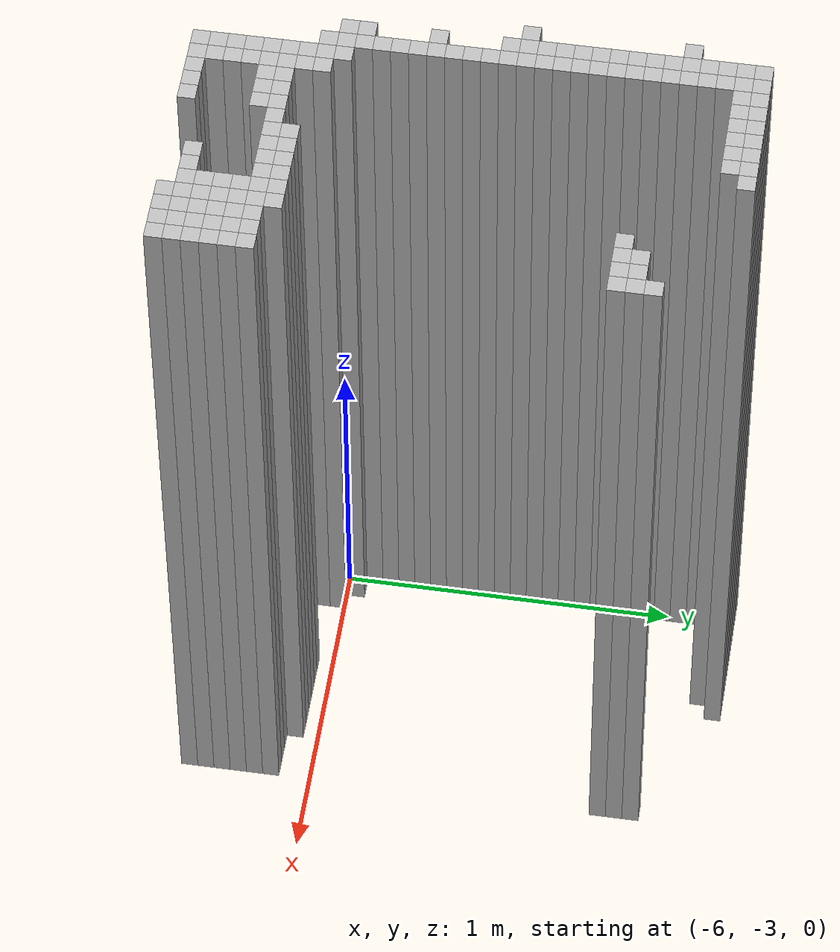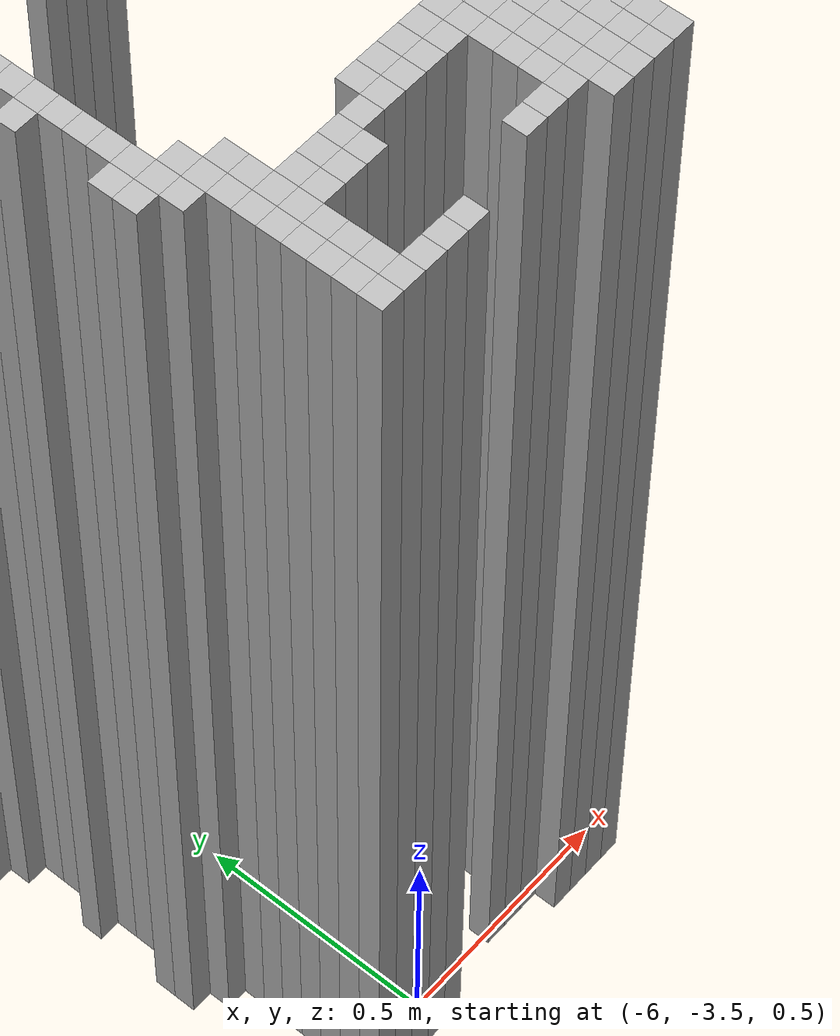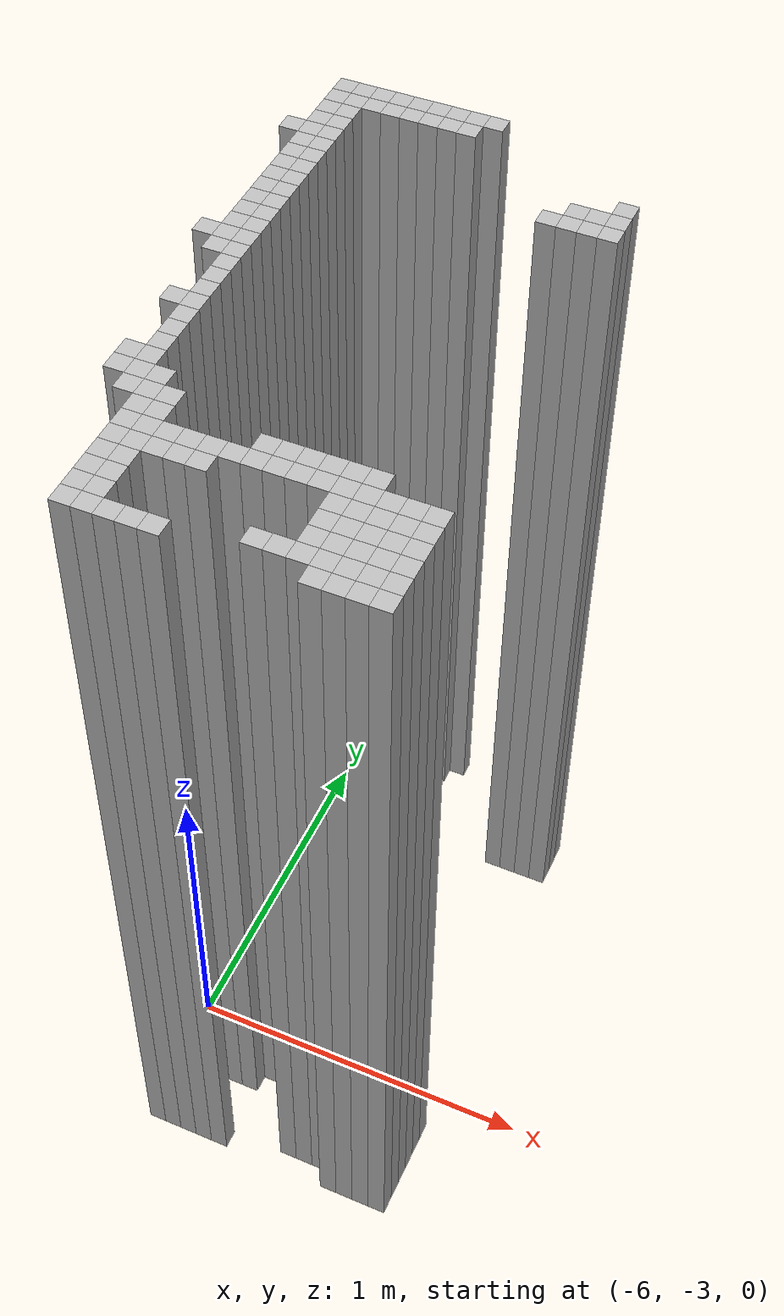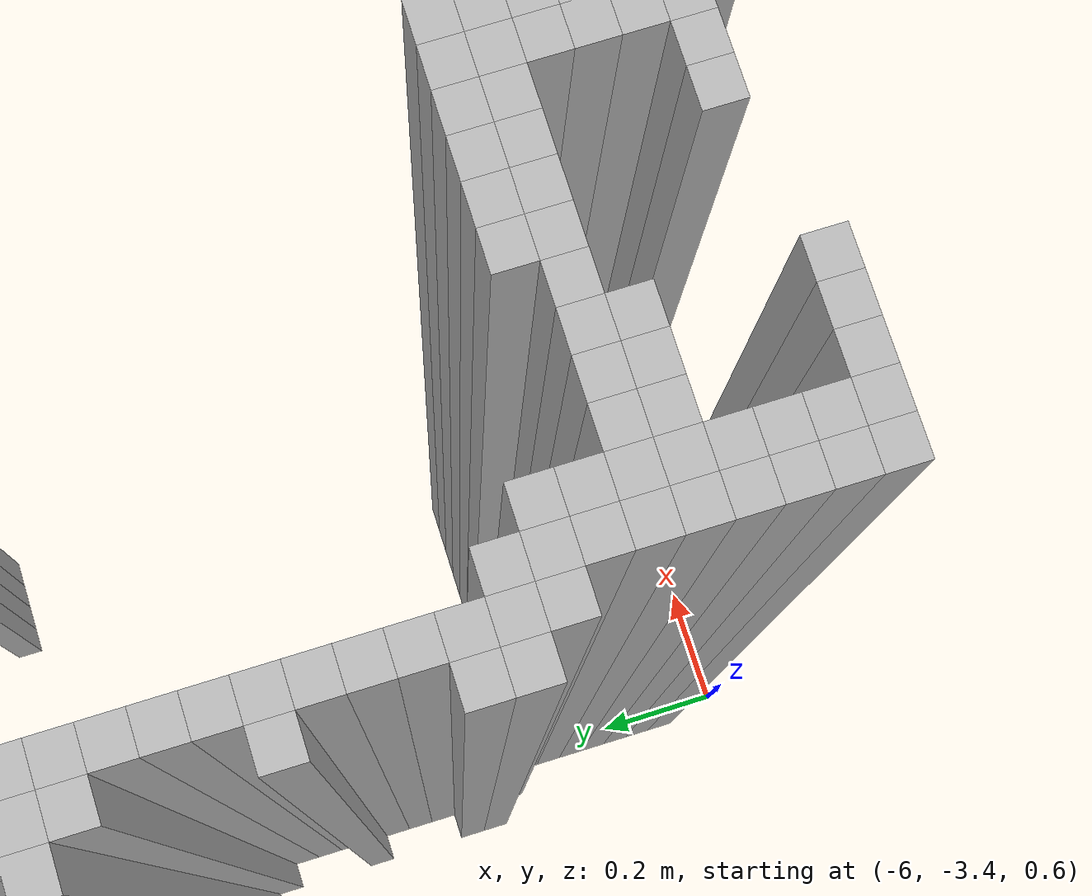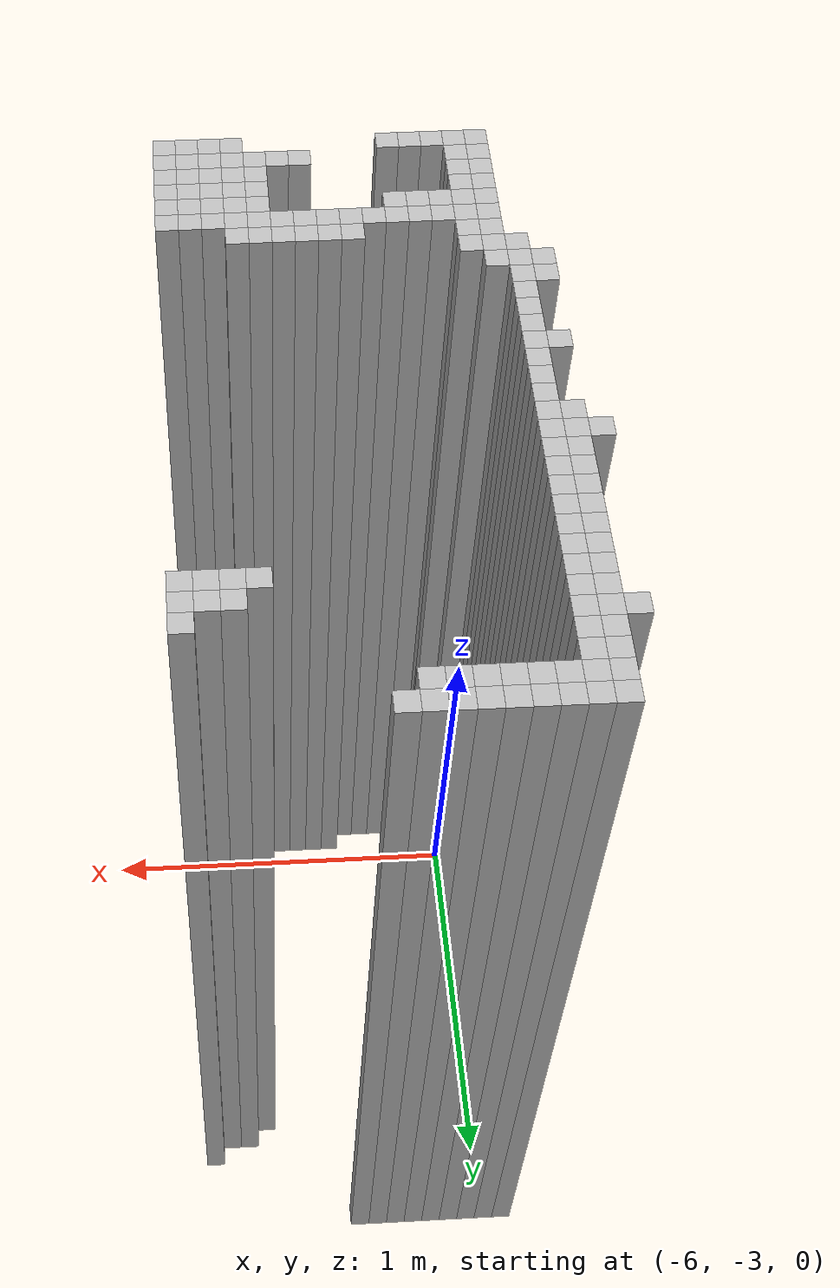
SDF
<sdf version="1.9">
 <world name="map_world">
  <model name="wall_102_190">
   <static>true</static>
   <pose>-6.061 -1.820 1.250 0 0 0</pose>
   <link name="link">
    <collision name="collision"><geometry><box><size>0.050 0.050 2.500</size></box></geometry></collision>
    <visual name="visual"><geometry><box><size>0.050 0.050 2.500</size></box></geometry></visual>
   </link>
  </model>
  <model name="wall_103_190">
   <static>true</static>
   <pose>-6.011 -1.820 1.250 0 0 0</pose>
   <link name="link">
    <collision name="collision"><geometry><box><size>0.050 0.050 2.500</size></box></geometry></collision>
    <visual name="visual"><geometry><box><size>0.050 0.050 2.500</size></box></geometry></visual>
   </link>
  </model>
  <model name="wall_104_190">
   <static>true</static>
   <pose>-5.961 -1.820 1.250 0 0 0</pose>
   <link name="link">
    <collision name="collision"><geometry><box><size>0.050 0.050 2.500</size></box></geometry></collision>
    <visual name="visual"><geometry><box><size>0.050 0.050 2.500</size></box></geometry></visual>
   </link>
  </model>
  <model name="wall_105_190">
   <static>true</static>
   <pose>-5.911 -1.820 1.250 0 0 0</pose>
   <link name="link">
    <collision name="collision"><geometry><box><size>0.050 0.050 2.500</size></box></geometry></collision>
    <visual name="visual"><geometry><box><size>0.050 0.050 2.500</size></box></geometry></visual>
   </link>
  </model>
  <model name="wall_106_190">
   <static>true</static>
   <pose>-5.861 -1.820 1.250 0 0 0</pose>
   <link name="link">
    <collision name="collision"><geometry><box><size>0.050 0.050 2.500</size></box></geometry></collision>
    <visual name="visual"><geometry><box><size>0.050 0.050 2.500</size></box></geometry></visual>
   </link>
  </model>
  <model name="wall_107_190">
   <static>true</static>
   <pose>-5.811 -1.820 1.250 0 0 0</pose>
   <link name="link">
    <collision name="collision"><geometry><box><size>0.050 0.050 2.500</size></box></geometry></collision>
    <visual name="visual"><geometry><box><size>0.050 0.050 2.500</size></box></geometry></visual>
   </link>
  </model>
  <model name="wall_108_190">
   <static>true</static>
   <pose>-5.761 -1.820 1.250 0 0 0</pose>
   <link name="link">
    <collision name="collision"><geometry><box><size>0.050 0.050 2.500</size></box></geometry></collision>
    <visual name="visual"><geometry><box><size>0.050 0.050 2.500</size></box></geometry></visual>
   </link>
  </model>
  <model name="wall_109_190">
   <static>true</static>
   <pose>-5.711 -1.820 1.250 0 0 0</pose>
   <link name="link">
    <collision name="collision"><geometry><box><size>0.050 0.050 2.500</size></box></geometry></collision>
    <visual name="visual"><geometry><box><size>0.050 0.050 2.500</size></box></geometry></visual>
   </link>
  </model>
  <model name="wall_110_190">
   <static>true</static>
   <pose>-5.661 -1.820 1.250 0 0 0</pose>
   <link name="link">
    <collision name="collision"><geometry><box><size>0.050 0.050 2.500</size></box></geometry></collision>
    <visual name="visual"><geometry><box><size>0.050 0.050 2.500</size></box></geometry></visual>
   </link>
  </model>
  <model name="wall_102_191">
   <static>true</static>
   <pose>-6.061 -1.870 1.250 0 0 0</pose>
   <link name="link">
    <collision name="collision"><geometry><box><size>0.050 0.050 2.500</size></box></geometry></collision>
    <visual name="visual"><geometry><box><size>0.050 0.050 2.500</size></box></geometry></visual>
   </link>
  </model>
  <model name="wall_103_191">
   <static>true</static>
   <pose>-6.011 -1.870 1.250 0 0 0</pose>
   <link name="link">
    <collision name="collision"><geometry><box><size>0.050 0.050 2.500</size></box></geometry></collision>
    <visual name="visual"><geometry><box><size>0.050 0.050 2.500</size></box></geometry></visual>
   </link>
  </model>
  <model name="wall_104_191">
   <static>true</static>
   <pose>-5.961 -1.870 1.250 0 0 0</pose>
   <link name="link">
    <collision name="collision"><geometry><box><size>0.050 0.050 2.500</size></box></geometry></collision>
    <visual name="visual"><geometry><box><size>0.050 0.050 2.500</size></box></geometry></visual>
   </link>
  </model>
  <model name="wall_105_191">
   <static>true</static>
   <pose>-5.911 -1.870 1.250 0 0 0</pose>
   <link name="link">
    <collision name="collision"><geometry><box><size>0.050 0.050 2.500</size></box></geometry></collision>
    <visual name="visual"><geometry><box><size>0.050 0.050 2.500</size></box></geometry></visual>
   </link>
  </model>
  <model name="wall_106_191">
   <static>true</static>
   <pose>-5.861 -1.870 1.250 0 0 0</pose>
   <link name="link">
    <collision name="collision"><geometry><box><size>0.050 0.050 2.500</size></box></geometry></collision>
    <visual name="visual"><geometry><box><size>0.050 0.050 2.500</size></box></geometry></visual>
   </link>
  </model>
  <model name="wall_107_191">
   <static>true</static>
   <pose>-5.811 -1.870 1.250 0 0 0</pose>
   <link name="link">
    <collision name="collision"><geometry><box><size>0.050 0.050 2.500</size></box></geometry></collision>
    <visual name="visual"><geometry><box><size>0.050 0.050 2.500</size></box></geometry></visual>
   </link>
  </model>
  <model name="wall_108_191">
   <static>true</static>
   <pose>-5.761 -1.870 1.250 0 0 0</pose>
   <link name="link">
    <collision name="collision"><geometry><box><size>0.050 0.050 2.500</size></box></geometry></collision>
    <visual name="visual"><geometry><box><size>0.050 0.050 2.500</size></box></geometry></visual>
   </link>
  </model>
  <model name="wall_109_191">
   <static>true</static>
   <pose>-5.711 -1.870 1.250 0 0 0</pose>
   <link name="link">
    <collision name="collision"><geometry><box><size>0.050 0.050 2.500</size></box></geometry></collision>
    <visual name="visual"><geometry><box><size>0.050 0.050 2.500</size></box></geometry></visual>
   </link>
  </model>
  <model name="wall_102_192">
   <static>true</static>
   <pose>-6.061 -1.920 1.250 0 0 0</pose>
   <link name="link">
    <collision name="collision"><geometry><box><size>0.050 0.050 2.500</size></box></geometry></collision>
    <visual name="visual"><geometry><box><size>0.050 0.050 2.500</size></box></geometry></visual>
   </link>
  </model>
  <model name="wall_103_192">
   <static>true</static>
   <pose>-6.011 -1.920 1.250 0 0 0</pose>
   <link name="link">
    <collision name="collision"><geometry><box><size>0.050 0.050 2.500</size></box></geometry></collision>
    <visual name="visual"><geometry><box><size>0.050 0.050 2.500</size></box></geometry></visual>
   </link>
  </model>
  <model name="wall_102_193">
   <static>true</static>
   <pose>-6.061 -1.970 1.250 0 0 0</pose>
   <link name="link">
    <collision name="collision"><geometry><box><size>0.050 0.050 2.500</size></box></geometry></collision>
    <visual name="visual"><geometry><box><size>0.050 0.050 2.500</size></box></geometry></visual>
   </link>
  </model>
  <model name="wall_103_193">
   <static>true</static>
   <pose>-6.011 -1.970 1.250 0 0 0</pose>
   <link name="link">
    <collision name="collision"><geometry><box><size>0.050 0.050 2.500</size></box></geometry></collision>
    <visual name="visual"><geometry><box><size>0.050 0.050 2.500</size></box></geometry></visual>
   </link>
  </model>
  <model name="wall_101_194">
   <static>true</static>
   <pose>-6.111 -2.020 1.250 0 0 0</pose>
   <link name="link">
    <collision name="collision"><geometry><box><size>0.050 0.050 2.500</size></box></geometry></collision>
    <visual name="visual"><geometry><box><size>0.050 0.050 2.500</size></box></geometry></visual>
   </link>
  </model>
  <model name="wall_102_194">
   <static>true</static>
   <pose>-6.061 -2.020 1.250 0 0 0</pose>
   <link name="link">
    <collision name="collision"><geometry><box><size>0.050 0.050 2.500</size></box></geometry></collision>
    <visual name="visual"><geometry><box><size>0.050 0.050 2.500</size></box></geometry></visual>
   </link>
  </model>
  <model name="wall_103_194">
   <static>true</static>
   <pose>-6.011 -2.020 1.250 0 0 0</pose>
   <link name="link">
    <collision name="collision"><geometry><box><size>0.050 0.050 2.500</size></box></geometry></collision>
    <visual name="visual"><geometry><box><size>0.050 0.050 2.500</size></box></geometry></visual>
   </link>
  </model>
  <model name="wall_118_194">
   <static>true</static>
   <pose>-5.261 -2.020 1.250 0 0 0</pose>
   <link name="link">
    <collision name="collision"><geometry><box><size>0.050 0.050 2.500</size></box></geometry></collision>
    <visual name="visual"><geometry><box><size>0.050 0.050 2.500</size></box></geometry></visual>
   </link>
  </model>
  <model name="wall_102_195">
   <static>true</static>
   <pose>-6.061 -2.070 1.250 0 0 0</pose>
   <link name="link">
    <collision name="collision"><geometry><box><size>0.050 0.050 2.500</size></box></geometry></collision>
    <visual name="visual"><geometry><box><size>0.050 0.050 2.500</size></box></geometry></visual>
   </link>
  </model>
  <model name="wall_103_195">
   <static>true</static>
   <pose>-6.011 -2.070 1.250 0 0 0</pose>
   <link name="link">
    <collision name="collision"><geometry><box><size>0.050 0.050 2.500</size></box></geometry></collision>
    <visual name="visual"><geometry><box><size>0.050 0.050 2.500</size></box></geometry></visual>
   </link>
  </model>
  <model name="wall_116_195">
   <static>true</static>
   <pose>-5.361 -2.070 1.250 0 0 0</pose>
   <link name="link">
    <collision name="collision"><geometry><box><size>0.050 0.050 2.500</size></box></geometry></collision>
    <visual name="visual"><geometry><box><size>0.050 0.050 2.500</size></box></geometry></visual>
   </link>
  </model>
  <model name="wall_117_195">
   <static>true</static>
   <pose>-5.311 -2.070 1.250 0 0 0</pose>
   <link name="link">
    <collision name="collision"><geometry><box><size>0.050 0.050 2.500</size></box></geometry></collision>
    <visual name="visual"><geometry><box><size>0.050 0.050 2.500</size></box></geometry></visual>
   </link>
  </model>
  <model name="wall_118_195">
   <static>true</static>
   <pose>-5.261 -2.070 1.250 0 0 0</pose>
   <link name="link">
    <collision name="collision"><geometry><box><size>0.050 0.050 2.500</size></box></geometry></collision>
    <visual name="visual"><geometry><box><size>0.050 0.050 2.500</size></box></geometry></visual>
   </link>
  </model>
  <model name="wall_102_196">
   <static>true</static>
   <pose>-6.061 -2.120 1.250 0 0 0</pose>
   <link name="link">
    <collision name="collision"><geometry><box><size>0.050 0.050 2.500</size></box></geometry></collision>
    <visual name="visual"><geometry><box><size>0.050 0.050 2.500</size></box></geometry></visual>
   </link>
  </model>
  <model name="wall_103_196">
   <static>true</static>
   <pose>-6.011 -2.120 1.250 0 0 0</pose>
   <link name="link">
    <collision name="collision"><geometry><box><size>0.050 0.050 2.500</size></box></geometry></collision>
    <visual name="visual"><geometry><box><size>0.050 0.050 2.500</size></box></geometry></visual>
   </link>
  </model>
  <model name="wall_115_196">
   <static>true</static>
   <pose>-5.411 -2.120 1.250 0 0 0</pose>
   <link name="link">
    <collision name="collision"><geometry><box><size>0.050 0.050 2.500</size></box></geometry></collision>
    <visual name="visual"><geometry><box><size>0.050 0.050 2.500</size></box></geometry></visual>
   </link>
  </model>
  <model name="wall_116_196">
   <static>true</static>
   <pose>-5.361 -2.120 1.250 0 0 0</pose>
   <link name="link">
    <collision name="collision"><geometry><box><size>0.050 0.050 2.500</size></box></geometry></collision>
    <visual name="visual"><geometry><box><size>0.050 0.050 2.500</size></box></geometry></visual>
   </link>
  </model>
  <model name="wall_117_196">
   <static>true</static>
   <pose>-5.311 -2.120 1.250 0 0 0</pose>
   <link name="link">
    <collision name="collision"><geometry><box><size>0.050 0.050 2.500</size></box></geometry></collision>
    <visual name="visual"><geometry><box><size>0.050 0.050 2.500</size></box></geometry></visual>
   </link>
  </model>
  <model name="wall_118_196">
   <static>true</static>
   <pose>-5.261 -2.120 1.250 0 0 0</pose>
   <link name="link">
    <collision name="collision"><geometry><box><size>0.050 0.050 2.500</size></box></geometry></collision>
    <visual name="visual"><geometry><box><size>0.050 0.050 2.500</size></box></geometry></visual>
   </link>
  </model>
  <model name="wall_102_197">
   <static>true</static>
   <pose>-6.061 -2.170 1.250 0 0 0</pose>
   <link name="link">
    <collision name="collision"><geometry><box><size>0.050 0.050 2.500</size></box></geometry></collision>
    <visual name="visual"><geometry><box><size>0.050 0.050 2.500</size></box></geometry></visual>
   </link>
  </model>
  <model name="wall_103_197">
   <static>true</static>
   <pose>-6.011 -2.170 1.250 0 0 0</pose>
   <link name="link">
    <collision name="collision"><geometry><box><size>0.050 0.050 2.500</size></box></geometry></collision>
    <visual name="visual"><geometry><box><size>0.050 0.050 2.500</size></box></geometry></visual>
   </link>
  </model>
  <model name="wall_102_198">
   <static>true</static>
   <pose>-6.061 -2.220 1.250 0 0 0</pose>
   <link name="link">
    <collision name="collision"><geometry><box><size>0.050 0.050 2.500</size></box></geometry></collision>
    <visual name="visual"><geometry><box><size>0.050 0.050 2.500</size></box></geometry></visual>
   </link>
  </model>
  <model name="wall_103_198">
   <static>true</static>
   <pose>-6.011 -2.220 1.250 0 0 0</pose>
   <link name="link">
    <collision name="collision"><geometry><box><size>0.050 0.050 2.500</size></box></geometry></collision>
    <visual name="visual"><geometry><box><size>0.050 0.050 2.500</size></box></geometry></visual>
   </link>
  </model>
  <model name="wall_102_199">
   <static>true</static>
   <pose>-6.061 -2.270 1.250 0 0 0</pose>
   <link name="link">
    <collision name="collision"><geometry><box><size>0.050 0.050 2.500</size></box></geometry></collision>
    <visual name="visual"><geometry><box><size>0.050 0.050 2.500</size></box></geometry></visual>
   </link>
  </model>
  <model name="wall_103_199">
   <static>true</static>
   <pose>-6.011 -2.270 1.250 0 0 0</pose>
   <link name="link">
    <collision name="collision"><geometry><box><size>0.050 0.050 2.500</size></box></geometry></collision>
    <visual name="visual"><geometry><box><size>0.050 0.050 2.500</size></box></geometry></visual>
   </link>
  </model>
  <model name="wall_102_200">
   <static>true</static>
   <pose>-6.061 -2.320 1.250 0 0 0</pose>
   <link name="link">
    <collision name="collision"><geometry><box><size>0.050 0.050 2.500</size></box></geometry></collision>
    <visual name="visual"><geometry><box><size>0.050 0.050 2.500</size></box></geometry></visual>
   </link>
  </model>
  <model name="wall_103_200">
   <static>true</static>
   <pose>-6.011 -2.320 1.250 0 0 0</pose>
   <link name="link">
    <collision name="collision"><geometry><box><size>0.050 0.050 2.500</size></box></geometry></collision>
    <visual name="visual"><geometry><box><size>0.050 0.050 2.500</size></box></geometry></visual>
   </link>
  </model>
  <model name="wall_102_201">
   <static>true</static>
   <pose>-6.061 -2.370 1.250 0 0 0</pose>
   <link name="link">
    <collision name="collision"><geometry><box><size>0.050 0.050 2.500</size></box></geometry></collision>
    <visual name="visual"><geometry><box><size>0.050 0.050 2.500</size></box></geometry></visual>
   </link>
  </model>
  <model name="wall_103_201">
   <static>true</static>
   <pose>-6.011 -2.370 1.250 0 0 0</pose>
   <link name="link">
    <collision name="collision"><geometry><box><size>0.050 0.050 2.500</size></box></geometry></collision>
    <visual name="visual"><geometry><box><size>0.050 0.050 2.500</size></box></geometry></visual>
   </link>
  </model>
  <model name="wall_102_202">
   <static>true</static>
   <pose>-6.061 -2.420 1.250 0 0 0</pose>
   <link name="link">
    <collision name="collision"><geometry><box><size>0.050 0.050 2.500</size></box></geometry></collision>
    <visual name="visual"><geometry><box><size>0.050 0.050 2.500</size></box></geometry></visual>
   </link>
  </model>
  <model name="wall_103_202">
   <static>true</static>
   <pose>-6.011 -2.420 1.250 0 0 0</pose>
   <link name="link">
    <collision name="collision"><geometry><box><size>0.050 0.050 2.500</size></box></geometry></collision>
    <visual name="visual"><geometry><box><size>0.050 0.050 2.500</size></box></geometry></visual>
   </link>
  </model>
  <model name="wall_101_203">
   <static>true</static>
   <pose>-6.111 -2.470 1.250 0 0 0</pose>
   <link name="link">
    <collision name="collision"><geometry><box><size>0.050 0.050 2.500</size></box></geometry></collision>
    <visual name="visual"><geometry><box><size>0.050 0.050 2.500</size></box></geometry></visual>
   </link>
  </model>
  <model name="wall_102_203">
   <static>true</static>
   <pose>-6.061 -2.470 1.250 0 0 0</pose>
   <link name="link">
    <collision name="collision"><geometry><box><size>0.050 0.050 2.500</size></box></geometry></collision>
    <visual name="visual"><geometry><box><size>0.050 0.050 2.500</size></box></geometry></visual>
   </link>
  </model>
  <model name="wall_103_203">
   <static>true</static>
   <pose>-6.011 -2.470 1.250 0 0 0</pose>
   <link name="link">
    <collision name="collision"><geometry><box><size>0.050 0.050 2.500</size></box></geometry></collision>
    <visual name="visual"><geometry><box><size>0.050 0.050 2.500</size></box></geometry></visual>
   </link>
  </model>
  <model name="wall_102_204">
   <static>true</static>
   <pose>-6.061 -2.520 1.250 0 0 0</pose>
   <link name="link">
    <collision name="collision"><geometry><box><size>0.050 0.050 2.500</size></box></geometry></collision>
    <visual name="visual"><geometry><box><size>0.050 0.050 2.500</size></box></geometry></visual>
   </link>
  </model>
  <model name="wall_103_204">
   <static>true</static>
   <pose>-6.011 -2.520 1.250 0 0 0</pose>
   <link name="link">
    <collision name="collision"><geometry><box><size>0.050 0.050 2.500</size></box></geometry></collision>
    <visual name="visual"><geometry><box><size>0.050 0.050 2.500</size></box></geometry></visual>
   </link>
  </model>
  <model name="wall_103_205">
   <static>true</static>
   <pose>-6.011 -2.570 1.250 0 0 0</pose>
   <link name="link">
    <collision name="collision"><geometry><box><size>0.050 0.050 2.500</size></box></geometry></collision>
    <visual name="visual"><geometry><box><size>0.050 0.050 2.500</size></box></geometry></visual>
   </link>
  </model>
  <model name="wall_103_206">
   <static>true</static>
   <pose>-6.011 -2.620 1.250 0 0 0</pose>
   <link name="link">
    <collision name="collision"><geometry><box><size>0.050 0.050 2.500</size></box></geometry></collision>
    <visual name="visual"><geometry><box><size>0.050 0.050 2.500</size></box></geometry></visual>
   </link>
  </model>
  <model name="wall_103_207">
   <static>true</static>
   <pose>-6.011 -2.670 1.250 0 0 0</pose>
   <link name="link">
    <collision name="collision"><geometry><box><size>0.050 0.050 2.500</size></box></geometry></collision>
    <visual name="visual"><geometry><box><size>0.050 0.050 2.500</size></box></geometry></visual>
   </link>
  </model>
  <model name="wall_102_208">
   <static>true</static>
   <pose>-6.061 -2.720 1.250 0 0 0</pose>
   <link name="link">
    <collision name="collision"><geometry><box><size>0.050 0.050 2.500</size></box></geometry></collision>
    <visual name="visual"><geometry><box><size>0.050 0.050 2.500</size></box></geometry></visual>
   </link>
  </model>
  <model name="wall_103_208">
   <static>true</static>
   <pose>-6.011 -2.720 1.250 0 0 0</pose>
   <link name="link">
    <collision name="collision"><geometry><box><size>0.050 0.050 2.500</size></box></geometry></collision>
    <visual name="visual"><geometry><box><size>0.050 0.050 2.500</size></box></geometry></visual>
   </link>
  </model>
  <model name="wall_103_209">
   <static>true</static>
   <pose>-6.011 -2.770 1.250 0 0 0</pose>
   <link name="link">
    <collision name="collision"><geometry><box><size>0.050 0.050 2.500</size></box></geometry></collision>
    <visual name="visual"><geometry><box><size>0.050 0.050 2.500</size></box></geometry></visual>
   </link>
  </model>
  <model name="wall_103_210">
   <static>true</static>
   <pose>-6.011 -2.820 1.250 0 0 0</pose>
   <link name="link">
    <collision name="collision"><geometry><box><size>0.050 0.050 2.500</size></box></geometry></collision>
    <visual name="visual"><geometry><box><size>0.050 0.050 2.500</size></box></geometry></visual>
   </link>
  </model>
  <model name="wall_103_211">
   <static>true</static>
   <pose>-6.011 -2.870 1.250 0 0 0</pose>
   <link name="link">
    <collision name="collision"><geometry><box><size>0.050 0.050 2.500</size></box></geometry></collision>
    <visual name="visual"><geometry><box><size>0.050 0.050 2.500</size></box></geometry></visual>
   </link>
  </model>
  <model name="wall_102_212">
   <static>true</static>
   <pose>-6.061 -2.920 1.250 0 0 0</pose>
   <link name="link">
    <collision name="collision"><geometry><box><size>0.050 0.050 2.500</size></box></geometry></collision>
    <visual name="visual"><geometry><box><size>0.050 0.050 2.500</size></box></geometry></visual>
   </link>
  </model>
  <model name="wall_103_212">
   <static>true</static>
   <pose>-6.011 -2.920 1.250 0 0 0</pose>
   <link name="link">
    <collision name="collision"><geometry><box><size>0.050 0.050 2.500</size></box></geometry></collision>
    <visual name="visual"><geometry><box><size>0.050 0.050 2.500</size></box></geometry></visual>
   </link>
  </model>
  <model name="wall_102_213">
   <static>true</static>
   <pose>-6.061 -2.970 1.250 0 0 0</pose>
   <link name="link">
    <collision name="collision"><geometry><box><size>0.050 0.050 2.500</size></box></geometry></collision>
    <visual name="visual"><geometry><box><size>0.050 0.050 2.500</size></box></geometry></visual>
   </link>
  </model>
  <model name="wall_103_213">
   <static>true</static>
   <pose>-6.011 -2.970 1.250 0 0 0</pose>
   <link name="link">
    <collision name="collision"><geometry><box><size>0.050 0.050 2.500</size></box></geometry></collision>
    <visual name="visual"><geometry><box><size>0.050 0.050 2.500</size></box></geometry></visual>
   </link>
  </model>
  <model name="wall_104_213">
   <static>true</static>
   <pose>-5.961 -2.970 1.250 0 0 0</pose>
   <link name="link">
    <collision name="collision"><geometry><box><size>0.050 0.050 2.500</size></box></geometry></collision>
    <visual name="visual"><geometry><box><size>0.050 0.050 2.500</size></box></geometry></visual>
   </link>
  </model>
  <model name="wall_103_214">
   <static>true</static>
   <pose>-6.011 -3.020 1.250 0 0 0</pose>
   <link name="link">
    <collision name="collision"><geometry><box><size>0.050 0.050 2.500</size></box></geometry></collision>
    <visual name="visual"><geometry><box><size>0.050 0.050 2.500</size></box></geometry></visual>
   </link>
  </model>
  <model name="wall_104_214">
   <static>true</static>
   <pose>-5.961 -3.020 1.250 0 0 0</pose>
   <link name="link">
    <collision name="collision"><geometry><box><size>0.050 0.050 2.500</size></box></geometry></collision>
    <visual name="visual"><geometry><box><size>0.050 0.050 2.500</size></box></geometry></visual>
   </link>
  </model>
  <model name="wall_105_214">
   <static>true</static>
   <pose>-5.911 -3.020 1.250 0 0 0</pose>
   <link name="link">
    <collision name="collision"><geometry><box><size>0.050 0.050 2.500</size></box></geometry></collision>
    <visual name="visual"><geometry><box><size>0.050 0.050 2.500</size></box></geometry></visual>
   </link>
  </model>
  <model name="wall_104_215">
   <static>true</static>
   <pose>-5.961 -3.070 1.250 0 0 0</pose>
   <link name="link">
    <collision name="collision"><geometry><box><size>0.050 0.050 2.500</size></box></geometry></collision>
    <visual name="visual"><geometry><box><size>0.050 0.050 2.500</size></box></geometry></visual>
   </link>
  </model>
  <model name="wall_105_215">
   <static>true</static>
   <pose>-5.911 -3.070 1.250 0 0 0</pose>
   <link name="link">
    <collision name="collision"><geometry><box><size>0.050 0.050 2.500</size></box></geometry></collision>
    <visual name="visual"><geometry><box><size>0.050 0.050 2.500</size></box></geometry></visual>
   </link>
  </model>
  <model name="wall_110_215">
   <static>true</static>
   <pose>-5.661 -3.070 1.250 0 0 0</pose>
   <link name="link">
    <collision name="collision"><geometry><box><size>0.050 0.050 2.500</size></box></geometry></collision>
    <visual name="visual"><geometry><box><size>0.050 0.050 2.500</size></box></geometry></visual>
   </link>
  </model>
  <model name="wall_111_215">
   <static>true</static>
   <pose>-5.611 -3.070 1.250 0 0 0</pose>
   <link name="link">
    <collision name="collision"><geometry><box><size>0.050 0.050 2.500</size></box></geometry></collision>
    <visual name="visual"><geometry><box><size>0.050 0.050 2.500</size></box></geometry></visual>
   </link>
  </model>
  <model name="wall_112_215">
   <static>true</static>
   <pose>-5.561 -3.070 1.250 0 0 0</pose>
   <link name="link">
    <collision name="collision"><geometry><box><size>0.050 0.050 2.500</size></box></geometry></collision>
    <visual name="visual"><geometry><box><size>0.050 0.050 2.500</size></box></geometry></visual>
   </link>
  </model>
  <model name="wall_113_215">
   <static>true</static>
   <pose>-5.511 -3.070 1.250 0 0 0</pose>
   <link name="link">
    <collision name="collision"><geometry><box><size>0.050 0.050 2.500</size></box></geometry></collision>
    <visual name="visual"><geometry><box><size>0.050 0.050 2.500</size></box></geometry></visual>
   </link>
  </model>
  <model name="wall_114_215">
   <static>true</static>
   <pose>-5.461 -3.070 1.250 0 0 0</pose>
   <link name="link">
    <collision name="collision"><geometry><box><size>0.050 0.050 2.500</size></box></geometry></collision>
    <visual name="visual"><geometry><box><size>0.050 0.050 2.500</size></box></geometry></visual>
   </link>
  </model>
  <model name="wall_115_215">
   <static>true</static>
   <pose>-5.411 -3.070 1.250 0 0 0</pose>
   <link name="link">
    <collision name="collision"><geometry><box><size>0.050 0.050 2.500</size></box></geometry></collision>
    <visual name="visual"><geometry><box><size>0.050 0.050 2.500</size></box></geometry></visual>
   </link>
  </model>
  <model name="wall_104_216">
   <static>true</static>
   <pose>-5.961 -3.120 1.250 0 0 0</pose>
   <link name="link">
    <collision name="collision"><geometry><box><size>0.050 0.050 2.500</size></box></geometry></collision>
    <visual name="visual"><geometry><box><size>0.050 0.050 2.500</size></box></geometry></visual>
   </link>
  </model>
  <model name="wall_105_216">
   <static>true</static>
   <pose>-5.911 -3.120 1.250 0 0 0</pose>
   <link name="link">
    <collision name="collision"><geometry><box><size>0.050 0.050 2.500</size></box></geometry></collision>
    <visual name="visual"><geometry><box><size>0.050 0.050 2.500</size></box></geometry></visual>
   </link>
  </model>
  <model name="wall_106_216">
   <static>true</static>
   <pose>-5.861 -3.120 1.250 0 0 0</pose>
   <link name="link">
    <collision name="collision"><geometry><box><size>0.050 0.050 2.500</size></box></geometry></collision>
    <visual name="visual"><geometry><box><size>0.050 0.050 2.500</size></box></geometry></visual>
   </link>
  </model>
  <model name="wall_107_216">
   <static>true</static>
   <pose>-5.811 -3.120 1.250 0 0 0</pose>
   <link name="link">
    <collision name="collision"><geometry><box><size>0.050 0.050 2.500</size></box></geometry></collision>
    <visual name="visual"><geometry><box><size>0.050 0.050 2.500</size></box></geometry></visual>
   </link>
  </model>
  <model name="wall_108_216">
   <static>true</static>
   <pose>-5.761 -3.120 1.250 0 0 0</pose>
   <link name="link">
    <collision name="collision"><geometry><box><size>0.050 0.050 2.500</size></box></geometry></collision>
    <visual name="visual"><geometry><box><size>0.050 0.050 2.500</size></box></geometry></visual>
   </link>
  </model>
  <model name="wall_109_216">
   <static>true</static>
   <pose>-5.711 -3.120 1.250 0 0 0</pose>
   <link name="link">
    <collision name="collision"><geometry><box><size>0.050 0.050 2.500</size></box></geometry></collision>
    <visual name="visual"><geometry><box><size>0.050 0.050 2.500</size></box></geometry></visual>
   </link>
  </model>
  <model name="wall_110_216">
   <static>true</static>
   <pose>-5.661 -3.120 1.250 0 0 0</pose>
   <link name="link">
    <collision name="collision"><geometry><box><size>0.050 0.050 2.500</size></box></geometry></collision>
    <visual name="visual"><geometry><box><size>0.050 0.050 2.500</size></box></geometry></visual>
   </link>
  </model>
  <model name="wall_111_216">
   <static>true</static>
   <pose>-5.611 -3.120 1.250 0 0 0</pose>
   <link name="link">
    <collision name="collision"><geometry><box><size>0.050 0.050 2.500</size></box></geometry></collision>
    <visual name="visual"><geometry><box><size>0.050 0.050 2.500</size></box></geometry></visual>
   </link>
  </model>
  <model name="wall_112_216">
   <static>true</static>
   <pose>-5.561 -3.120 1.250 0 0 0</pose>
   <link name="link">
    <collision name="collision"><geometry><box><size>0.050 0.050 2.500</size></box></geometry></collision>
    <visual name="visual"><geometry><box><size>0.050 0.050 2.500</size></box></geometry></visual>
   </link>
  </model>
  <model name="wall_113_216">
   <static>true</static>
   <pose>-5.511 -3.120 1.250 0 0 0</pose>
   <link name="link">
    <collision name="collision"><geometry><box><size>0.050 0.050 2.500</size></box></geometry></collision>
    <visual name="visual"><geometry><box><size>0.050 0.050 2.500</size></box></geometry></visual>
   </link>
  </model>
  <model name="wall_114_216">
   <static>true</static>
   <pose>-5.461 -3.120 1.250 0 0 0</pose>
   <link name="link">
    <collision name="collision"><geometry><box><size>0.050 0.050 2.500</size></box></geometry></collision>
    <visual name="visual"><geometry><box><size>0.050 0.050 2.500</size></box></geometry></visual>
   </link>
  </model>
  <model name="wall_115_216">
   <static>true</static>
   <pose>-5.411 -3.120 1.250 0 0 0</pose>
   <link name="link">
    <collision name="collision"><geometry><box><size>0.050 0.050 2.500</size></box></geometry></collision>
    <visual name="visual"><geometry><box><size>0.050 0.050 2.500</size></box></geometry></visual>
   </link>
  </model>
  <model name="wall_116_216">
   <static>true</static>
   <pose>-5.361 -3.120 1.250 0 0 0</pose>
   <link name="link">
    <collision name="collision"><geometry><box><size>0.050 0.050 2.500</size></box></geometry></collision>
    <visual name="visual"><geometry><box><size>0.050 0.050 2.500</size></box></geometry></visual>
   </link>
  </model>
  <model name="wall_117_216">
   <static>true</static>
   <pose>-5.311 -3.120 1.250 0 0 0</pose>
   <link name="link">
    <collision name="collision"><geometry><box><size>0.050 0.050 2.500</size></box></geometry></collision>
    <visual name="visual"><geometry><box><size>0.050 0.050 2.500</size></box></geometry></visual>
   </link>
  </model>
  <model name="wall_118_216">
   <static>true</static>
   <pose>-5.261 -3.120 1.250 0 0 0</pose>
   <link name="link">
    <collision name="collision"><geometry><box><size>0.050 0.050 2.500</size></box></geometry></collision>
    <visual name="visual"><geometry><box><size>0.050 0.050 2.500</size></box></geometry></visual>
   </link>
  </model>
  <model name="wall_104_217">
   <static>true</static>
   <pose>-5.961 -3.170 1.250 0 0 0</pose>
   <link name="link">
    <collision name="collision"><geometry><box><size>0.050 0.050 2.500</size></box></geometry></collision>
    <visual name="visual"><geometry><box><size>0.050 0.050 2.500</size></box></geometry></visual>
   </link>
  </model>
  <model name="wall_105_217">
   <static>true</static>
   <pose>-5.911 -3.170 1.250 0 0 0</pose>
   <link name="link">
    <collision name="collision"><geometry><box><size>0.050 0.050 2.500</size></box></geometry></collision>
    <visual name="visual"><geometry><box><size>0.050 0.050 2.500</size></box></geometry></visual>
   </link>
  </model>
  <model name="wall_106_217">
   <static>true</static>
   <pose>-5.861 -3.170 1.250 0 0 0</pose>
   <link name="link">
    <collision name="collision"><geometry><box><size>0.050 0.050 2.500</size></box></geometry></collision>
    <visual name="visual"><geometry><box><size>0.050 0.050 2.500</size></box></geometry></visual>
   </link>
  </model>
  <model name="wall_107_217">
   <static>true</static>
   <pose>-5.811 -3.170 1.250 0 0 0</pose>
   <link name="link">
    <collision name="collision"><geometry><box><size>0.050 0.050 2.500</size></box></geometry></collision>
    <visual name="visual"><geometry><box><size>0.050 0.050 2.500</size></box></geometry></visual>
   </link>
  </model>
  <model name="wall_108_217">
   <static>true</static>
   <pose>-5.761 -3.170 1.250 0 0 0</pose>
   <link name="link">
    <collision name="collision"><geometry><box><size>0.050 0.050 2.500</size></box></geometry></collision>
    <visual name="visual"><geometry><box><size>0.050 0.050 2.500</size></box></geometry></visual>
   </link>
  </model>
  <model name="wall_114_217">
   <static>true</static>
   <pose>-5.461 -3.170 1.250 0 0 0</pose>
   <link name="link">
    <collision name="collision"><geometry><box><size>0.050 0.050 2.500</size></box></geometry></collision>
    <visual name="visual"><geometry><box><size>0.050 0.050 2.500</size></box></geometry></visual>
   </link>
  </model>
  <model name="wall_115_217">
   <static>true</static>
   <pose>-5.411 -3.170 1.250 0 0 0</pose>
   <link name="link">
    <collision name="collision"><geometry><box><size>0.050 0.050 2.500</size></box></geometry></collision>
    <visual name="visual"><geometry><box><size>0.050 0.050 2.500</size></box></geometry></visual>
   </link>
  </model>
  <model name="wall_116_217">
   <static>true</static>
   <pose>-5.361 -3.170 1.250 0 0 0</pose>
   <link name="link">
    <collision name="collision"><geometry><box><size>0.050 0.050 2.500</size></box></geometry></collision>
    <visual name="visual"><geometry><box><size>0.050 0.050 2.500</size></box></geometry></visual>
   </link>
  </model>
  <model name="wall_117_217">
   <static>true</static>
   <pose>-5.311 -3.170 1.250 0 0 0</pose>
   <link name="link">
    <collision name="collision"><geometry><box><size>0.050 0.050 2.500</size></box></geometry></collision>
    <visual name="visual"><geometry><box><size>0.050 0.050 2.500</size></box></geometry></visual>
   </link>
  </model>
  <model name="wall_118_217">
   <static>true</static>
   <pose>-5.261 -3.170 1.250 0 0 0</pose>
   <link name="link">
    <collision name="collision"><geometry><box><size>0.050 0.050 2.500</size></box></geometry></collision>
    <visual name="visual"><geometry><box><size>0.050 0.050 2.500</size></box></geometry></visual>
   </link>
  </model>
  <model name="wall_104_218">
   <static>true</static>
   <pose>-5.961 -3.220 1.250 0 0 0</pose>
   <link name="link">
    <collision name="collision"><geometry><box><size>0.050 0.050 2.500</size></box></geometry></collision>
    <visual name="visual"><geometry><box><size>0.050 0.050 2.500</size></box></geometry></visual>
   </link>
  </model>
  <model name="wall_105_218">
   <static>true</static>
   <pose>-5.911 -3.220 1.250 0 0 0</pose>
   <link name="link">
    <collision name="collision"><geometry><box><size>0.050 0.050 2.500</size></box></geometry></collision>
    <visual name="visual"><geometry><box><size>0.050 0.050 2.500</size></box></geometry></visual>
   </link>
  </model>
  <model name="wall_114_218">
   <static>true</static>
   <pose>-5.461 -3.220 1.250 0 0 0</pose>
   <link name="link">
    <collision name="collision"><geometry><box><size>0.050 0.050 2.500</size></box></geometry></collision>
    <visual name="visual"><geometry><box><size>0.050 0.050 2.500</size></box></geometry></visual>
   </link>
  </model>
  <model name="wall_115_218">
   <static>true</static>
   <pose>-5.411 -3.220 1.250 0 0 0</pose>
   <link name="link">
    <collision name="collision"><geometry><box><size>0.050 0.050 2.500</size></box></geometry></collision>
    <visual name="visual"><geometry><box><size>0.050 0.050 2.500</size></box></geometry></visual>
   </link>
  </model>
  <model name="wall_116_218">
   <static>true</static>
   <pose>-5.361 -3.220 1.250 0 0 0</pose>
   <link name="link">
    <collision name="collision"><geometry><box><size>0.050 0.050 2.500</size></box></geometry></collision>
    <visual name="visual"><geometry><box><size>0.050 0.050 2.500</size></box></geometry></visual>
   </link>
  </model>
  <model name="wall_117_218">
   <static>true</static>
   <pose>-5.311 -3.220 1.250 0 0 0</pose>
   <link name="link">
    <collision name="collision"><geometry><box><size>0.050 0.050 2.500</size></box></geometry></collision>
    <visual name="visual"><geometry><box><size>0.050 0.050 2.500</size></box></geometry></visual>
   </link>
  </model>
  <model name="wall_118_218">
   <static>true</static>
   <pose>-5.261 -3.220 1.250 0 0 0</pose>
   <link name="link">
    <collision name="collision"><geometry><box><size>0.050 0.050 2.500</size></box></geometry></collision>
    <visual name="visual"><geometry><box><size>0.050 0.050 2.500</size></box></geometry></visual>
   </link>
  </model>
  <model name="wall_104_219">
   <static>true</static>
   <pose>-5.961 -3.270 1.250 0 0 0</pose>
   <link name="link">
    <collision name="collision"><geometry><box><size>0.050 0.050 2.500</size></box></geometry></collision>
    <visual name="visual"><geometry><box><size>0.050 0.050 2.500</size></box></geometry></visual>
   </link>
  </model>
  <model name="wall_105_219">
   <static>true</static>
   <pose>-5.911 -3.270 1.250 0 0 0</pose>
   <link name="link">
    <collision name="collision"><geometry><box><size>0.050 0.050 2.500</size></box></geometry></collision>
    <visual name="visual"><geometry><box><size>0.050 0.050 2.500</size></box></geometry></visual>
   </link>
  </model>
  <model name="wall_114_219">
   <static>true</static>
   <pose>-5.461 -3.270 1.250 0 0 0</pose>
   <link name="link">
    <collision name="collision"><geometry><box><size>0.050 0.050 2.500</size></box></geometry></collision>
    <visual name="visual"><geometry><box><size>0.050 0.050 2.500</size></box></geometry></visual>
   </link>
  </model>
  <model name="wall_115_219">
   <static>true</static>
   <pose>-5.411 -3.270 1.250 0 0 0</pose>
   <link name="link">
    <collision name="collision"><geometry><box><size>0.050 0.050 2.500</size></box></geometry></collision>
    <visual name="visual"><geometry><box><size>0.050 0.050 2.500</size></box></geometry></visual>
   </link>
  </model>
  <model name="wall_116_219">
   <static>true</static>
   <pose>-5.361 -3.270 1.250 0 0 0</pose>
   <link name="link">
    <collision name="collision"><geometry><box><size>0.050 0.050 2.500</size></box></geometry></collision>
    <visual name="visual"><geometry><box><size>0.050 0.050 2.500</size></box></geometry></visual>
   </link>
  </model>
  <model name="wall_117_219">
   <static>true</static>
   <pose>-5.311 -3.270 1.250 0 0 0</pose>
   <link name="link">
    <collision name="collision"><geometry><box><size>0.050 0.050 2.500</size></box></geometry></collision>
    <visual name="visual"><geometry><box><size>0.050 0.050 2.500</size></box></geometry></visual>
   </link>
  </model>
  <model name="wall_118_219">
   <static>true</static>
   <pose>-5.261 -3.270 1.250 0 0 0</pose>
   <link name="link">
    <collision name="collision"><geometry><box><size>0.050 0.050 2.500</size></box></geometry></collision>
    <visual name="visual"><geometry><box><size>0.050 0.050 2.500</size></box></geometry></visual>
   </link>
  </model>
  <model name="wall_104_220">
   <static>true</static>
   <pose>-5.961 -3.320 1.250 0 0 0</pose>
   <link name="link">
    <collision name="collision"><geometry><box><size>0.050 0.050 2.500</size></box></geometry></collision>
    <visual name="visual"><geometry><box><size>0.050 0.050 2.500</size></box></geometry></visual>
   </link>
  </model>
  <model name="wall_105_220">
   <static>true</static>
   <pose>-5.911 -3.320 1.250 0 0 0</pose>
   <link name="link">
    <collision name="collision"><geometry><box><size>0.050 0.050 2.500</size></box></geometry></collision>
    <visual name="visual"><geometry><box><size>0.050 0.050 2.500</size></box></geometry></visual>
   </link>
  </model>
  <model name="wall_112_220">
   <static>true</static>
   <pose>-5.561 -3.320 1.250 0 0 0</pose>
   <link name="link">
    <collision name="collision"><geometry><box><size>0.050 0.050 2.500</size></box></geometry></collision>
    <visual name="visual"><geometry><box><size>0.050 0.050 2.500</size></box></geometry></visual>
   </link>
  </model>
  <model name="wall_113_220">
   <static>true</static>
   <pose>-5.511 -3.320 1.250 0 0 0</pose>
   <link name="link">
    <collision name="collision"><geometry><box><size>0.050 0.050 2.500</size></box></geometry></collision>
    <visual name="visual"><geometry><box><size>0.050 0.050 2.500</size></box></geometry></visual>
   </link>
  </model>
  <model name="wall_114_220">
   <static>true</static>
   <pose>-5.461 -3.320 1.250 0 0 0</pose>
   <link name="link">
    <collision name="collision"><geometry><box><size>0.050 0.050 2.500</size></box></geometry></collision>
    <visual name="visual"><geometry><box><size>0.050 0.050 2.500</size></box></geometry></visual>
   </link>
  </model>
  <model name="wall_115_220">
   <static>true</static>
   <pose>-5.411 -3.320 1.250 0 0 0</pose>
   <link name="link">
    <collision name="collision"><geometry><box><size>0.050 0.050 2.500</size></box></geometry></collision>
    <visual name="visual"><geometry><box><size>0.050 0.050 2.500</size></box></geometry></visual>
   </link>
  </model>
  <model name="wall_116_220">
   <static>true</static>
   <pose>-5.361 -3.320 1.250 0 0 0</pose>
   <link name="link">
    <collision name="collision"><geometry><box><size>0.050 0.050 2.500</size></box></geometry></collision>
    <visual name="visual"><geometry><box><size>0.050 0.050 2.500</size></box></geometry></visual>
   </link>
  </model>
  <model name="wall_117_220">
   <static>true</static>
   <pose>-5.311 -3.320 1.250 0 0 0</pose>
   <link name="link">
    <collision name="collision"><geometry><box><size>0.050 0.050 2.500</size></box></geometry></collision>
    <visual name="visual"><geometry><box><size>0.050 0.050 2.500</size></box></geometry></visual>
   </link>
  </model>
  <model name="wall_118_220">
   <static>true</static>
   <pose>-5.261 -3.320 1.250 0 0 0</pose>
   <link name="link">
    <collision name="collision"><geometry><box><size>0.050 0.050 2.500</size></box></geometry></collision>
    <visual name="visual"><geometry><box><size>0.050 0.050 2.500</size></box></geometry></visual>
   </link>
  </model>
  <model name="wall_104_221">
   <static>true</static>
   <pose>-5.961 -3.370 1.250 0 0 0</pose>
   <link name="link">
    <collision name="collision"><geometry><box><size>0.050 0.050 2.500</size></box></geometry></collision>
    <visual name="visual"><geometry><box><size>0.050 0.050 2.500</size></box></geometry></visual>
   </link>
  </model>
  <model name="wall_105_221">
   <static>true</static>
   <pose>-5.911 -3.370 1.250 0 0 0</pose>
   <link name="link">
    <collision name="collision"><geometry><box><size>0.050 0.050 2.500</size></box></geometry></collision>
    <visual name="visual"><geometry><box><size>0.050 0.050 2.500</size></box></geometry></visual>
   </link>
  </model>
  <model name="wall_106_221">
   <static>true</static>
   <pose>-5.861 -3.370 1.250 0 0 0</pose>
   <link name="link">
    <collision name="collision"><geometry><box><size>0.050 0.050 2.500</size></box></geometry></collision>
    <visual name="visual"><geometry><box><size>0.050 0.050 2.500</size></box></geometry></visual>
   </link>
  </model>
  <model name="wall_107_221">
   <static>true</static>
   <pose>-5.811 -3.370 1.250 0 0 0</pose>
   <link name="link">
    <collision name="collision"><geometry><box><size>0.050 0.050 2.500</size></box></geometry></collision>
    <visual name="visual"><geometry><box><size>0.050 0.050 2.500</size></box></geometry></visual>
   </link>
  </model>
  <model name="wall_108_221">
   <static>true</static>
   <pose>-5.761 -3.370 1.250 0 0 0</pose>
   <link name="link">
    <collision name="collision"><geometry><box><size>0.050 0.050 2.500</size></box></geometry></collision>
    <visual name="visual"><geometry><box><size>0.050 0.050 2.500</size></box></geometry></visual>
   </link>
  </model>
  <model name="wall_115_221">
   <static>true</static>
   <pose>-5.411 -3.370 1.250 0 0 0</pose>
   <link name="link">
    <collision name="collision"><geometry><box><size>0.050 0.050 2.500</size></box></geometry></collision>
    <visual name="visual"><geometry><box><size>0.050 0.050 2.500</size></box></geometry></visual>
   </link>
  </model>
  <model name="wall_116_221">
   <static>true</static>
   <pose>-5.361 -3.370 1.250 0 0 0</pose>
   <link name="link">
    <collision name="collision"><geometry><box><size>0.050 0.050 2.500</size></box></geometry></collision>
    <visual name="visual"><geometry><box><size>0.050 0.050 2.500</size></box></geometry></visual>
   </link>
  </model>
  <model name="wall_117_221">
   <static>true</static>
   <pose>-5.311 -3.370 1.250 0 0 0</pose>
   <link name="link">
    <collision name="collision"><geometry><box><size>0.050 0.050 2.500</size></box></geometry></collision>
    <visual name="visual"><geometry><box><size>0.050 0.050 2.500</size></box></geometry></visual>
   </link>
  </model>
  <model name="wall_118_221">
   <static>true</static>
   <pose>-5.261 -3.370 1.250 0 0 0</pose>
   <link name="link">
    <collision name="collision"><geometry><box><size>0.050 0.050 2.500</size></box></geometry></collision>
    <visual name="visual"><geometry><box><size>0.050 0.050 2.500</size></box></geometry></visual>
   </link>
  </model>
 </world>
</sdf>
